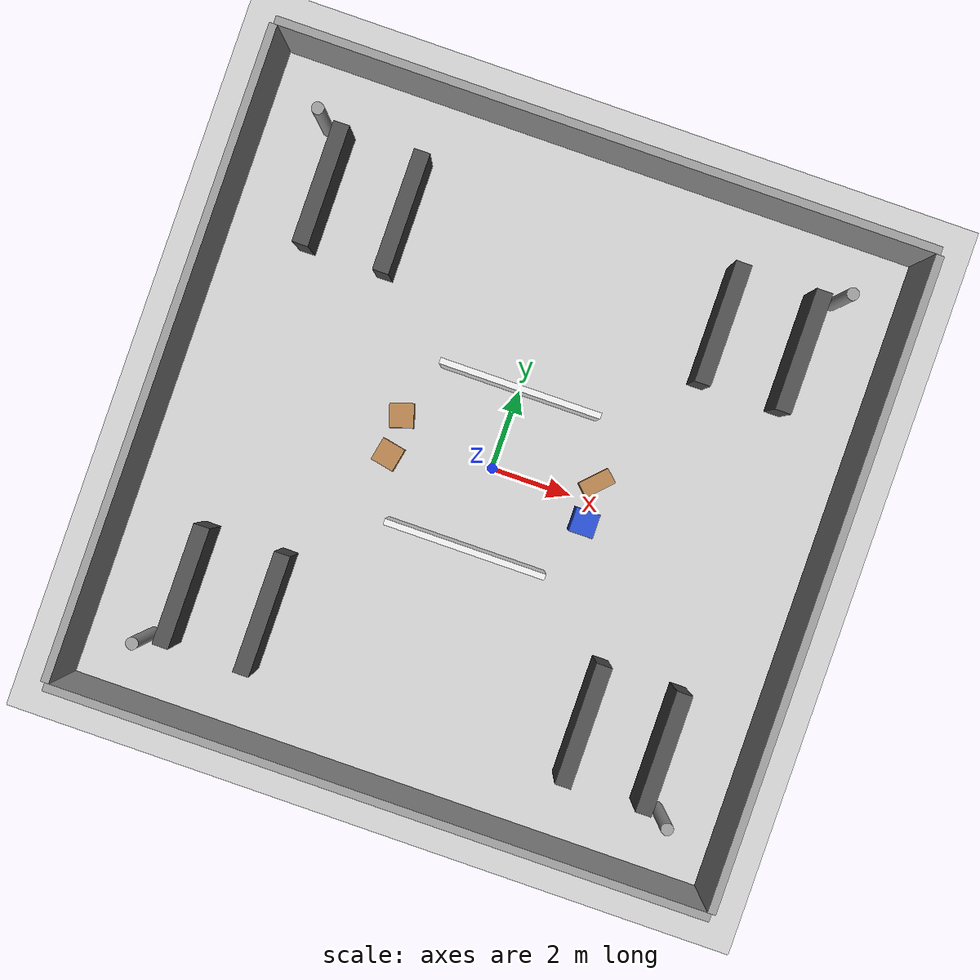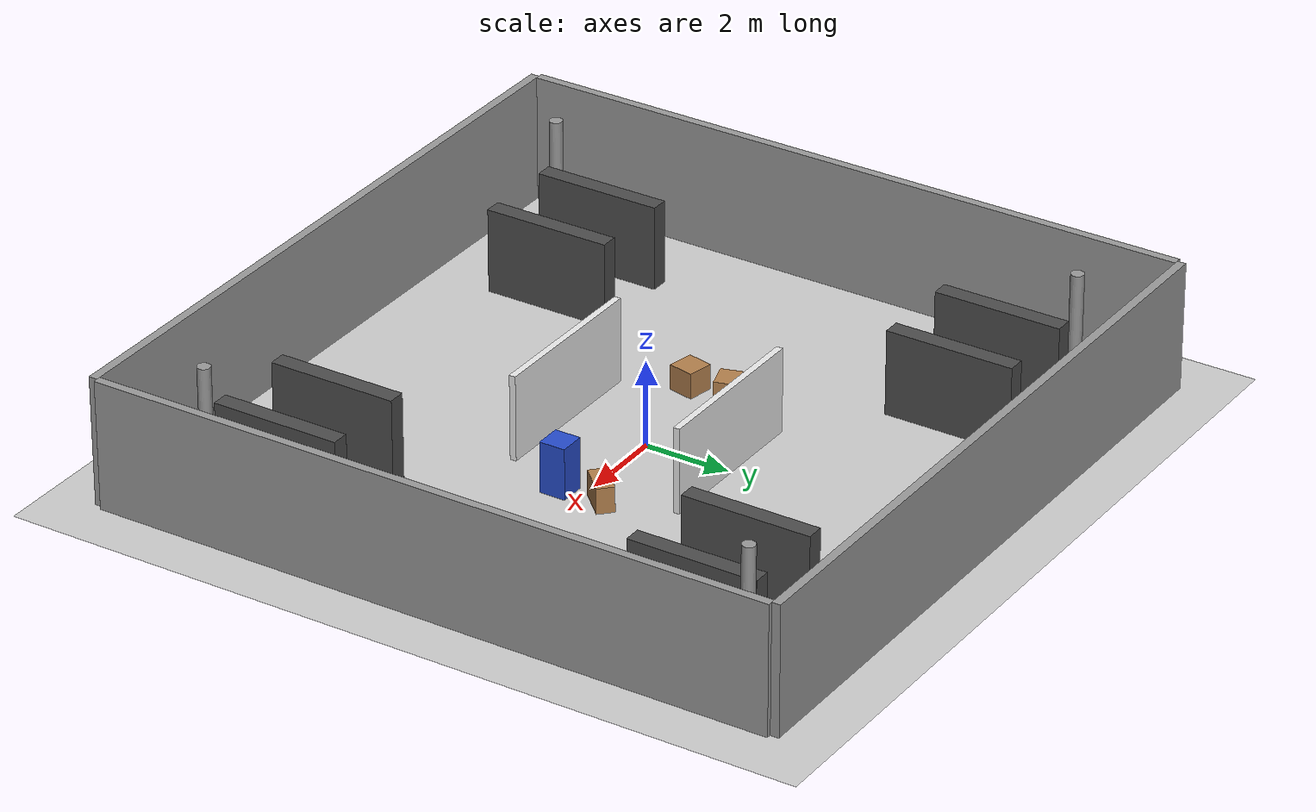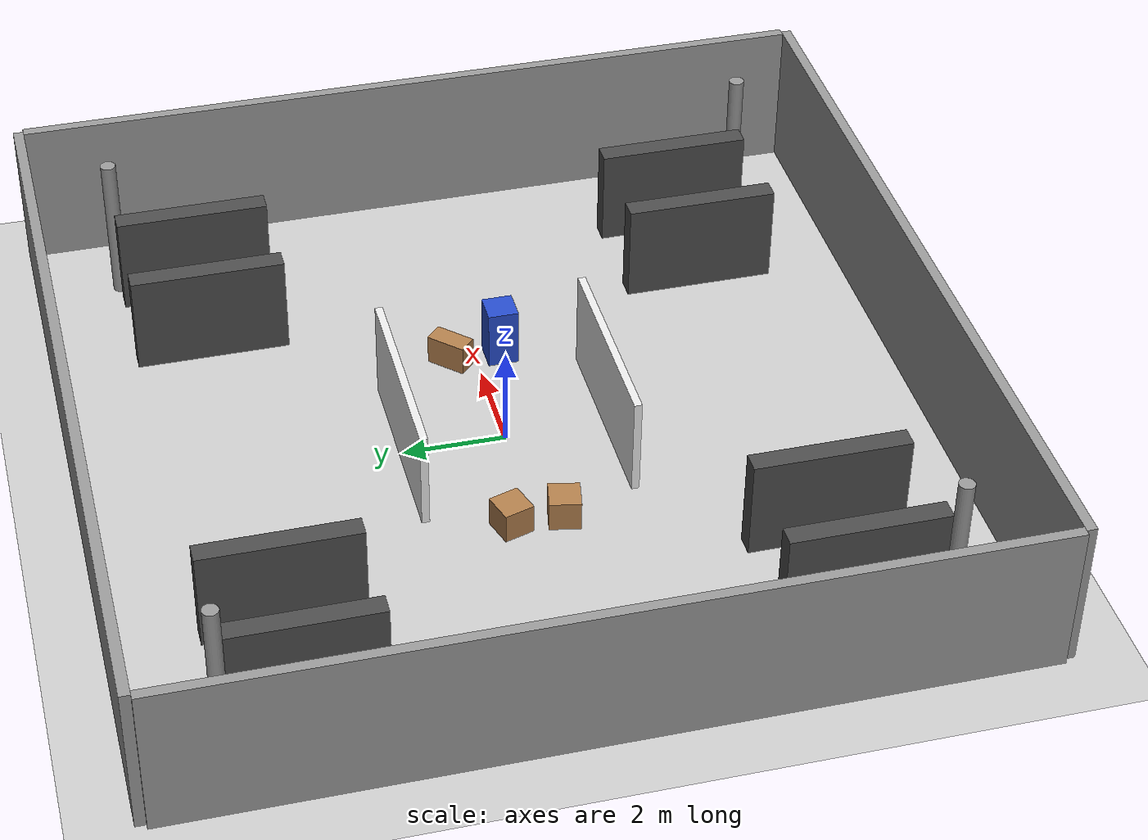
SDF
<?xml version="1.0" ?>
<sdf version="1.6">
  <world name="warehouse">

    <!-- ============================================================
         PHYSICS
         ============================================================ -->
    <physics name="default_physics" default="0" type="ode">
      <gravity>0 0 -9.8</gravity>
      <ode>
        <solver>
          <type>quick</type>
          <iters>50</iters>
          <sor>1.3</sor>
        </solver>
        <constraints>
          <cfm>0.0</cfm>
          <erp>0.2</erp>
          <contact_max_correcting_vel>100.0</contact_max_correcting_vel>
          <contact_surface_layer>0.001</contact_surface_layer>
        </constraints>
      </ode>
      <max_step_size>0.001</max_step_size>
      <real_time_factor>1</real_time_factor>
      <real_time_update_rate>1000</real_time_update_rate>
    </physics>

    <!-- ============================================================
         LIGHTING
         ============================================================ -->
    <light name="sun" type="directional">
      <cast_shadows>true</cast_shadows>
      <pose>0 0 10 0 0 0</pose>
      <diffuse>0.9 0.9 0.9 1</diffuse>
      <specular>0.3 0.3 0.3 1</specular>
      <direction>-0.5 0.1 -0.9</direction>
    </light>

    <!-- Fill light to soften shadows -->
    <light name="fill_light" type="directional">
      <cast_shadows>false</cast_shadows>
      <pose>5 -5 8 0 0 0</pose>
      <diffuse>0.4 0.4 0.5 1</diffuse>
      <specular>0.0 0.0 0.0 1</specular>
      <direction>0.5 0.5 -0.7</direction>
    </light>

    <!-- ============================================================
         GROUND PLANE
         ============================================================ -->
    <model name="ground_plane">
      <static>true</static>
      <link name="link">
        <collision name="collision">
          <geometry>
            <plane>
              <normal>0 0 1</normal>
              <size>100 100</size>
            </plane>
          </geometry>
          <surface>
            <friction>
              <ode><mu>100</mu><mu2>50</mu2></ode>
            </friction>
          </surface>
        </collision>
        <visual name="visual">
          <cast_shadows>false</cast_shadows>
          <geometry>
            <plane>
              <normal>0 0 1</normal>
              <size>100 100</size>
            </plane>
          </geometry>
          <material>
            <script>
              <uri>file://media/materials/scripts/gazebo.material</uri>
              <name>Gazebo/Concrete</name>
            </script>
          </material>
        </visual>
      </link>
    </model>

    <!-- North wall (y = +8) -->
    <model name="wall_north">
      <static>true</static>
      <pose>0 8.1 1.5 0 0 0</pose>
      <link name="link">
        <collision name="collision">
          <geometry><box><size>16.2 0.2 3.0</size></box></geometry>
        </collision>
        <visual name="visual">
          <geometry><box><size>16.2 0.2 3.0</size></box></geometry>
          <material><script><uri>file://media/materials/scripts/gazebo.material</uri>
            <name>Gazebo/Grey</name></script></material>
        </visual>
      </link>
    </model>

    <!-- South wall (y = -8) -->
    <model name="wall_south">
      <static>true</static>
      <pose>0 -8.1 1.5 0 0 0</pose>
      <link name="link">
        <collision name="collision">
          <geometry><box><size>16.2 0.2 3.0</size></box></geometry>
        </collision>
        <visual name="visual">
          <geometry><box><size>16.2 0.2 3.0</size></box></geometry>
          <material><script><uri>file://media/materials/scripts/gazebo.material</uri>
            <name>Gazebo/Grey</name></script></material>
        </visual>
      </link>
    </model>

    <!-- East wall (x = +8) -->
    <model name="wall_east">
      <static>true</static>
      <pose>8.1 0 1.5 0 0 0</pose>
      <link name="link">
        <collision name="collision">
          <geometry><box><size>0.2 16.0 3.0</size></box></geometry>
        </collision>
        <visual name="visual">
          <geometry><box><size>0.2 16.0 3.0</size></box></geometry>
          <material><script><uri>file://media/materials/scripts/gazebo.material</uri>
            <name>Gazebo/Grey</name></script></material>
        </visual>
      </link>
    </model>

    <!-- West wall (x = -8) -->
    <model name="wall_west">
      <static>true</static>
      <pose>-8.1 0 1.5 0 0 0</pose>
      <link name="link">
        <collision name="collision">
          <geometry><box><size>0.2 16.0 3.0</size></box></geometry>
        </collision>
        <visual name="visual">
          <geometry><box><size>0.2 16.0 3.0</size></box></geometry>
          <material><script><uri>file://media/materials/scripts/gazebo.material</uri>
            <name>Gazebo/Grey</name></script></material>
        </visual>
      </link>
    </model>

    <!-- Rack row A: north-west quad -->
    <model name="rack_A1">
      <static>true</static>
      <pose>-6.0 5.0 1.0 0 0 0</pose>
      <link name="link">
        <collision name="collision">
          <geometry><box><size>0.4 3.0 2.0</size></box></geometry>
        </collision>
        <visual name="visual">
          <geometry><box><size>0.4 3.0 2.0</size></box></geometry>
          <material><script><uri>file://media/materials/scripts/gazebo.material</uri>
            <name>Gazebo/DarkGrey</name></script></material>
        </visual>
      </link>
    </model>

    <model name="rack_A2">
      <static>true</static>
      <pose>-4.0 5.0 1.0 0 0 0</pose>
      <link name="link">
        <collision name="collision">
          <geometry><box><size>0.4 3.0 2.0</size></box></geometry>
        </collision>
        <visual name="visual">
          <geometry><box><size>0.4 3.0 2.0</size></box></geometry>
          <material><script><uri>file://media/materials/scripts/gazebo.material</uri>
            <name>Gazebo/DarkGrey</name></script></material>
        </visual>
      </link>
    </model>

    <!-- Rack row B: north-east quad -->
    <model name="rack_B1">
      <static>true</static>
      <pose>4.0 5.0 1.0 0 0 0</pose>
      <link name="link">
        <collision name="collision">
          <geometry><box><size>0.4 3.0 2.0</size></box></geometry>
        </collision>
        <visual name="visual">
          <geometry><box><size>0.4 3.0 2.0</size></box></geometry>
          <material><script><uri>file://media/materials/scripts/gazebo.material</uri>
            <name>Gazebo/DarkGrey</name></script></material>
        </visual>
      </link>
    </model>

    <model name="rack_B2">
      <static>true</static>
      <pose>6.0 5.0 1.0 0 0 0</pose>
      <link name="link">
        <collision name="collision">
          <geometry><box><size>0.4 3.0 2.0</size></box></geometry>
        </collision>
        <visual name="visual">
          <geometry><box><size>0.4 3.0 2.0</size></box></geometry>
          <material><script><uri>file://media/materials/scripts/gazebo.material</uri>
            <name>Gazebo/DarkGrey</name></script></material>
        </visual>
      </link>
    </model>

    <!-- ============================================================
         STORAGE RACKS (south side)
         ============================================================ -->
    <model name="rack_C1">
      <static>true</static>
      <pose>-6.0 -5.0 1.0 0 0 0</pose>
      <link name="link">
        <collision name="collision">
          <geometry><box><size>0.4 3.0 2.0</size></box></geometry>
        </collision>
        <visual name="visual">
          <geometry><box><size>0.4 3.0 2.0</size></box></geometry>
          <material><script><uri>file://media/materials/scripts/gazebo.material</uri>
            <name>Gazebo/DarkGrey</name></script></material>
        </visual>
      </link>
    </model>

    <model name="rack_C2">
      <static>true</static>
      <pose>-4.0 -5.0 1.0 0 0 0</pose>
      <link name="link">
        <collision name="collision">
          <geometry><box><size>0.4 3.0 2.0</size></box></geometry>
        </collision>
        <visual name="visual">
          <geometry><box><size>0.4 3.0 2.0</size></box></geometry>
          <material><script><uri>file://media/materials/scripts/gazebo.material</uri>
            <name>Gazebo/DarkGrey</name></script></material>
        </visual>
      </link>
    </model>

    <model name="rack_D1">
      <static>true</static>
      <pose>4.0 -5.0 1.0 0 0 0</pose>
      <link name="link">
        <collision name="collision">
          <geometry><box><size>0.4 3.0 2.0</size></box></geometry>
        </collision>
        <visual name="visual">
          <geometry><box><size>0.4 3.0 2.0</size></box></geometry>
          <material><script><uri>file://media/materials/scripts/gazebo.material</uri>
            <name>Gazebo/DarkGrey</name></script></material>
        </visual>
      </link>
    </model>

    <model name="rack_D2">
      <static>true</static>
      <pose>6.0 -5.0 1.0 0 0 0</pose>
      <link name="link">
        <collision name="collision">
          <geometry><box><size>0.4 3.0 2.0</size></box></geometry>
        </collision>
        <visual name="visual">
          <geometry><box><size>0.4 3.0 2.0</size></box></geometry>
          <material><script><uri>file://media/materials/scripts/gazebo.material</uri>
            <name>Gazebo/DarkGrey</name></script></material>
        </visual>
      </link>
    </model>

    <model name="interior_wall_1">
      <static>true</static>
      <pose>0 2.0 1.0 0 0 0</pose>
      <link name="link">
        <collision name="collision">
          <geometry><box><size>4.0 0.15 2.0</size></box></geometry>
        </collision>
        <visual name="visual">
          <geometry><box><size>4.0 0.15 2.0</size></box></geometry>
          <material><script><uri>file://media/materials/scripts/gazebo.material</uri>
            <name>Gazebo/White</name></script></material>
        </visual>
      </link>
    </model>

    <model name="interior_wall_2">
      <static>true</static>
      <pose>0 -2.0 1.0 0 0 0</pose>
      <link name="link">
        <collision name="collision">
          <geometry><box><size>4.0 0.15 2.0</size></box></geometry>
        </collision>
        <visual name="visual">
          <geometry><box><size>4.0 0.15 2.0</size></box></geometry>
          <material><script><uri>file://media/materials/scripts/gazebo.material</uri>
            <name>Gazebo/White</name></script></material>
        </visual>
      </link>
    </model>

    <model name="box_1">
      <static>true</static>
      <pose>-2.5 0.5 0.3 0 0 0.3</pose>
      <link name="link">
        <collision name="c"><geometry><box><size>0.6 0.6 0.6</size></box></geometry></collision>
        <visual name="v"><geometry><box><size>0.6 0.6 0.6</size></box></geometry>
          <material><script><uri>file://media/materials/scripts/gazebo.material</uri>
            <name>Gazebo/WoodFloor</name></script></material></visual>
      </link>
    </model>

    <model name="box_2">
      <static>true</static>
      <pose>-2.5 -0.5 0.3 0 0 -0.2</pose>
      <link name="link">
        <collision name="c"><geometry><box><size>0.6 0.6 0.6</size></box></geometry></collision>
        <visual name="v"><geometry><box><size>0.6 0.6 0.6</size></box></geometry>
          <material><script><uri>file://media/materials/scripts/gazebo.material</uri>
            <name>Gazebo/WoodFloor</name></script></material></visual>
      </link>
    </model>

    <model name="box_3">
      <static>true</static>
      <pose>2.5 0.5 0.3 0 0 0.8</pose>
      <link name="link">
        <collision name="c"><geometry><box><size>0.8 0.4 0.6</size></box></geometry></collision>
        <visual name="v"><geometry><box><size>0.8 0.4 0.6</size></box></geometry>
          <material><script><uri>file://media/materials/scripts/gazebo.material</uri>
            <name>Gazebo/WoodFloor</name></script></material></visual>
      </link>
    </model>

    <model name="box_4">
      <static>true</static>
      <pose>2.5 -0.5 0.6 0 0 0</pose>
      <link name="link">
        <collision name="c"><geometry><box><size>0.6 0.6 1.2</size></box></geometry></collision>
        <visual name="v"><geometry><box><size>0.6 0.6 1.2</size></box></geometry>
          <material><script><uri>file://media/materials/scripts/gazebo.material</uri>
            <name>Gazebo/Blue</name></script></material></visual>
      </link>
    </model>

    <!-- Corner pillars -->
    <model name="pillar_ne">
      <static>true</static>
      <pose>6.5 6.5 1.5 0 0 0</pose>
      <link name="link">
        <collision name="c"><geometry><cylinder><radius>0.15</radius><length>3.0</length></cylinder></geometry></collision>
        <visual name="v"><geometry><cylinder><radius>0.15</radius><length>3.0</length></cylinder></geometry>
          <material><script><uri>file://media/materials/scripts/gazebo.material</uri>
            <name>Gazebo/Grey</name></script></material></visual>
      </link>
    </model>

    <model name="pillar_nw">
      <static>true</static>
      <pose>-6.5 6.5 1.5 0 0 0</pose>
      <link name="link">
        <collision name="c"><geometry><cylinder><radius>0.15</radius><length>3.0</length></cylinder></geometry></collision>
        <visual name="v"><geometry><cylinder><radius>0.15</radius><length>3.0</length></cylinder></geometry>
          <material><script><uri>file://media/materials/scripts/gazebo.material</uri>
            <name>Gazebo/Grey</name></script></material></visual>
      </link>
    </model>

    <model name="pillar_se">
      <static>true</static>
      <pose>6.5 -6.5 1.5 0 0 0</pose>
      <link name="link">
        <collision name="c"><geometry><cylinder><radius>0.15</radius><length>3.0</length></cylinder></geometry></collision>
        <visual name="v"><geometry><cylinder><radius>0.15</radius><length>3.0</length></cylinder></geometry>
          <material><script><uri>file://media/materials/scripts/gazebo.material</uri>
            <name>Gazebo/Grey</name></script></material></visual>
      </link>
    </model>

    <model name="pillar_sw">
      <static>true</static>
      <pose>-6.5 -6.5 1.5 0 0 0</pose>
      <link name="link">
        <collision name="c"><geometry><cylinder><radius>0.15</radius><length>3.0</length></cylinder></geometry></collision>
        <visual name="v"><geometry><cylinder><radius>0.15</radius><length>3.0</length></cylinder></geometry>
          <material><script><uri>file://media/materials/scripts/gazebo.material</uri>
            <name>Gazebo/Grey</name></script></material></visual>
      </link>
    </model>

  </world>
</sdf>
